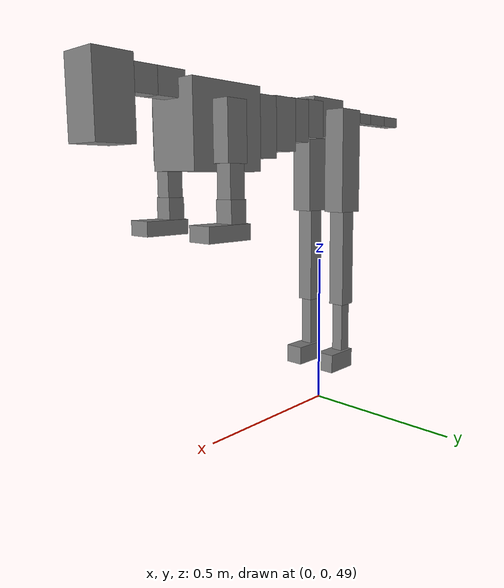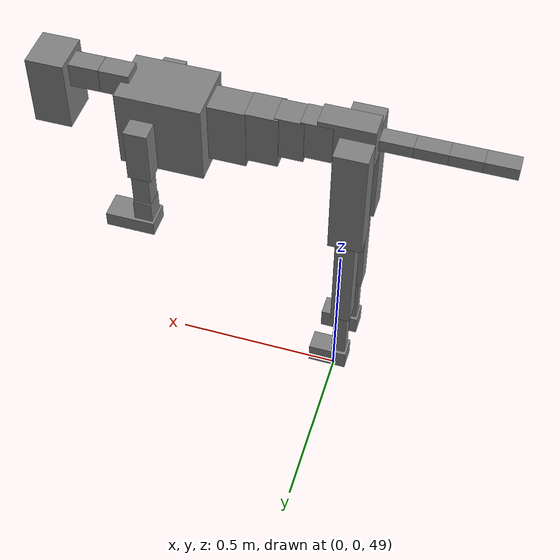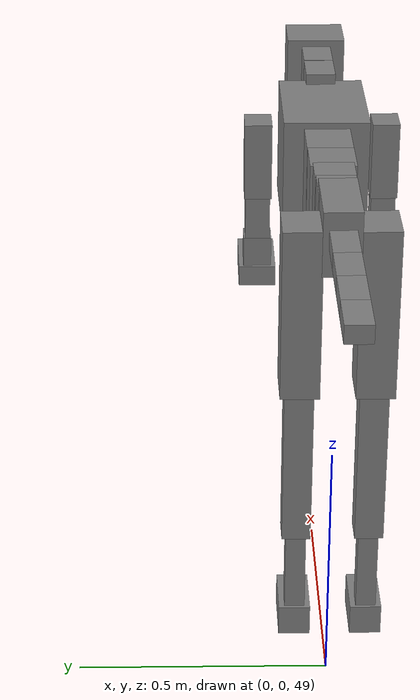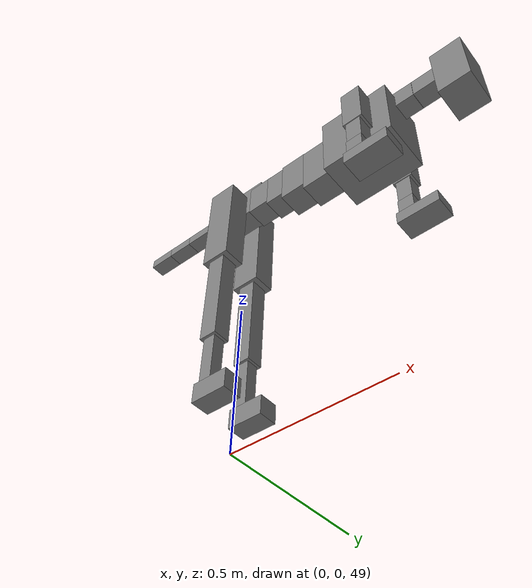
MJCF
<mujoco model="dog">

    <default>
        <joint armature="0.02" stiffness="1" damping="0.2" limited="true"/>
        <geom condim="3" friction="1 0.05 0.05" margin="0.01"/>
        <motor ctrllimited="true" ctrlrange="-1.0 1.0" forcelimited="true" gear="50"/>
    </default>

    <compiler inertiafromgeom="true" angle="radian"/>

    <option timestep="0.016" iterations="50" tolerance="1e-10" solver="Newton" jacobian="dense" cone="pyramidal"/>

    <size nconmax="20000" njmax="60000" nstack="5000000"/>
    <visual>
        <map force="0.1" zfar="30"/>
        <rgba haze="0.15 0.25 0.35 1"/>
        <quality shadowsize="2048"/>
        <global offwidth="800" offheight="800"/>
    </visual>

    <asset>
        <texture type="skybox" builtin="gradient" rgb1="0.3 0.5 0.7" rgb2="0 0 0" width="512" height="512"/>
        <texture name="texplane" type="2d" builtin="checker" rgb1=".2 .3 .4" rgb2=".1 0.15 0.2" width="512" height="512"
                 mark="cross" markrgb=".8 .8 .8"/>
        <texture name="texgeom" type="cube" builtin="flat" mark="cross" width="127" height="1278" rgb1="0.8 0.6 0.4"
                 rgb2="0.8 0.6 0.4" markrgb="1 1 1" random="0.01"/>

        <material name="matplane" reflectance="0.3" texture="texplane" texrepeat="1 1" texuniform="true"/>
        <material name="matgeom" texture="texgeom" texuniform="true" rgba="0.8 0.6 .4 1"/>
    </asset>

    <worldbody>
        <geom name="floor" pos="0 0 0" size="0 0 .25" type="plane" material="matplane" condim="3"/>

        <light directional="false" diffuse=".2 .2 .2" specular="0 0 0" pos="0 0 5" dir="0 0 -1" castshadow="false"/>
        <light mode="targetbodycom" target="torso" directional="false" diffuse=".8 .8 .8" specular="0.3 0.3 0.3"
               pos="0 0 4.0" dir="0 0 -1"/>

        <body name="root" pos="0 0 50">
            <freejoint name="root_1"/>
            <geom type="box" pos="0 0 -0.02" size="0.0774  0.0358  0.063" density="2030"/>

            <body name="spine1" pos="0.054 0 0">
                <joint name="spine1_y" axis="0 1 0" range="0 0.7" limited="true"/>
                <geom type="box" pos="0.02375 0 -0.03" size="0.04375  0.0375  0.05985" density="2030"/>

                <body name="spine2" pos="0.0612 0 0">
                    <joint name="spine2_y" axis="0 1 0" range="-0.15 0.15" limited="true"/>
                    <geom type="box" pos="0.03555  0  -0.04" size="0.04055  0.039  0.06615" density="2030"/>

                    <body name="spine3" pos="0.0730 0 0">
                        <joint name="spine3_y" axis="0 1 0" range="-0.15 0.15" limited="true"/>
                        <geom type="box" pos="0.03555  0  -0.057" size="0.04555  0.0445  0.081" density="2030"/>

                        <body name="spine4" pos="0.0780 0 0">
                            <joint name="spine4_y" axis="0 1 0" range="-0.15 0.15" limited="true"/>
                            <geom type="box" pos="0.05265  0  -0.07" size="0.05265  0.045  0.09135" density="2030"/>

                            <body name="torso" pos="0.1082 0 0">
                                <joint name="torso_y" axis="0 1 0" range="-0.15 0.15" limited="true"/>
                                <geom type="box" pos="0.11925  0  -0.085" size="0.11925  0.085  0.11745"
                                      density="2030"/>

                                <body name="neck1" pos="0.2160  0   0.0180">
                                    <joint name="neck1_y" axis="0 1 0" range="-1.2  -1" limited="true"/>
                                    <geom type="box" pos="0.0423  0  0" size="0.0423  0.03  0.036" density="2325"/>

                                    <body name="neck2" pos="0.0853  0  0">
                                        <joint name="neck2_y" axis="0 1 0" range="0.1  0" limited="true"/>
                                        <geom type="box" pos="0.0423  0  0" size="0.0423  0.03  0.036" density="2325"/>

                                        <body name="head" pos="0.0853  0  0">
                                            <joint name="head_y" axis="0 1 0" range="-0.3  -0.2" limited="true"/>
                                            <geom type="box" pos="0.0531  0  -0.055" size="0.0531  0.06  0.1044"
                                                  density="4030"/>

                                        </body>
                                    </body>
                                </body>

                                <body name="front_shoulder" pos="0.156  0   -0.0480">
                                    <joint name="front_shoulder_y" axis="0 1 0" range="-1 1.5" limited="true"/>
                                    <geom type="box" pos="0 0.13 -0.0542" size="0.0327  0.0279  0.0809" density="1158"/>
                                    <geom type="box" pos="0 -0.13 -0.0542" size="0.0327  0.0279  0.0809"
                                          density="1158"/>

                                    <body name="front_elbow" pos="0  0  -0.1085">
                                        <joint name="front_elbow_y" axis="0 1 0" range="-2 0" limited="true"/>
                                        <geom type="box" pos="0 0.13 -0.0659" size="0.0247  0.0253  0.0659"
                                              density="1081"/>
                                        <geom type="box" pos="0 -0.13 -0.0659" size="0.0247  0.0253  0.0659"
                                              density="1081"/>

                                        <body name="front_wrist" pos="0  0  -0.1318">
                                            <joint name="front_wrist_y" axis="0 1 0" range="-0.2 0" limited="true"/>
                                            <geom type="box" pos="0 0.13 -0.0324" size="0.0259  0.0288  0.0455"
                                                  density="1664"/>
                                            <geom type="box" pos="0 -0.13 -0.0324" size="0.0259  0.0288  0.0455"
                                                  density="1664"/>

                                            <body name="front_finger_end" pos="0  0  -0.0647">
                                                <joint name="front_finger_y" axis="0 1 0" range="-0.4 1"
                                                       limited="true"/>
                                                <geom type="box" pos="0.0381  0.13  -0.0066"
                                                      size="0.0699  0.0381  0.0216" density="1515"/>
                                                <geom type="box" pos="0.0381  -0.13  -0.0066"
                                                      size="0.0699  0.0381  0.0216" density="1515"/>

                                            </body>

                                        </body>
                                    </body>
                                </body>

                            </body>
                        </body>
                    </body>
                </body>
            </body>

            <body name="back_hip" pos="-0.03 0 -0.018">
                <joint name="back_hip_y" axis="0 1 0" range="-1.5 0.3" limited="true"/>
                <geom type="box" pos="0 0.07 -0.1459" size="0.0471  0.0370  0.1687" density="1154"/>
                <geom type="box" pos="0 -0.07 -0.1459" size="0.0471  0.0370  0.1687" density="1154"/>

                <body name="back_knee" pos="0  0  -0.2918">
                    <joint name="back_knee_y" axis="0 1 0" range="0 2.8" limited="true"/>
                    <geom type="box" pos="0 0.07 -0.1632" size="0.0282  0.0278  0.1787" density="1227"/>
                    <geom type="box" pos="0 -0.07 -0.1632" size="0.0282  0.0278  0.1787" density="1227"/>

                    <body name="back_ankle" pos="0  0  -0.3264">
                        <joint name="back_ankle_y" axis="0 1 0" range="-2.2 0" limited="true"/>
                        <geom type="box" pos="0 0.07 -0.0966" size="0.0196  0.0196  0.1079" density="1284"/>
                        <geom type="box" pos="0 -0.07 -0.0966" size="0.0196  0.0196  0.1079" density="1284"/>

                        <body name="back_toe_end" pos="0  0  -0.1932">
                            <joint name="back_toe_y" axis="0 1 0" range="-0.4 1" limited="true"/>
                            <geom type="box" pos="0.0306  0.07  -0.0158" size="0.0561  0.0306  0.0308" density="1515"/>
                            <geom type="box" pos="0.0306  -0.07  -0.0158" size="0.0561  0.0306  0.0308" density="1515"/>

                        </body>
                    </body>
                </body>
            </body>

            <body name="tail1" pos="-0.074 0 -0.006">
                <joint name="tail1_y" axis="0 1 0" range="-0.2 0.2" limited="true"/>
                <geom type="box" pos="-0.0536  0  0" size="0.045  0.025  0.0175" density="1587"/>

                <body name="tail2" pos="-0.09 0 0">
                    <joint name="tail2_y" axis="0 1 0" range="-0.2 0.2" limited="true"/>
                    <geom type="box" pos="-0.0536  0  0" size="0.045  0.025  0.0175" density="1587"/>

                    <body name="tail3" pos="-0.09 0 0">
                        <joint name="tail3_y" axis="0 1 0" range="-0.2 0.2" limited="true"/>
                        <geom type="box" pos="-0.0536  0  0" size="0.045  0.025  0.0175" density="1587"/>

                        <body name="tail4" pos="-0.09 0 0">
                            <joint name="tail4_y" axis="0 1 0" range="-0.2 0.2" limited="true"/>
                            <geom type="box" pos="-0.0536  0  0" size="0.045  0.025  0.0175" density="1587"/>

                        </body>
                    </body>
                </body>
            </body>
        </body>
    </worldbody>

    <actuator>
        <motor joint="spine1_y" forcerange="-150 150     "/>
        <motor joint="spine2_y" forcerange="-150 150     "/>
        <motor joint="spine3_y" forcerange="-150 150     "/>
        <motor joint="spine4_y" forcerange="-150 150     "/>
        <motor joint="torso_y" forcerange="-150 150     "/>
        <motor joint="neck1_y" forcerange="-100 100       "/>
        <motor joint="neck2_y" forcerange="-100 100       "/>
        <motor joint="head_y" forcerange="-150 150       "/>
        <motor joint="front_shoulder_y" forcerange="-125.13 161.09"/>
        <motor joint="front_elbow_y" forcerange="-100.76 183.17"/>
        <motor joint="front_wrist_y" forcerange="-85.30 144.79"/>
        <motor joint="front_finger_y" forcerange="-75.92 87.37"/>
        <motor joint="back_hip_y" forcerange="-394.61 298.20"/>
        <motor joint="back_knee_y" forcerange="-386.63 217.39"/>
        <motor joint="back_angle_y" forcerange="-123.40 89.49"/>
        <motor joint="back_toe_y" forcerange="-48.05 116.57"/>
        <motor joint="tail1_y" forcerange="-50 50     "/>
        <motor joint="tail2_y" forcerange="-50 50     "/>
        <motor joint="tail3_y" forcerange="-50 50     "/>
        <motor joint="tail4_y" forcerange="-50 50     "/>
    </actuator>
</mujoco>
